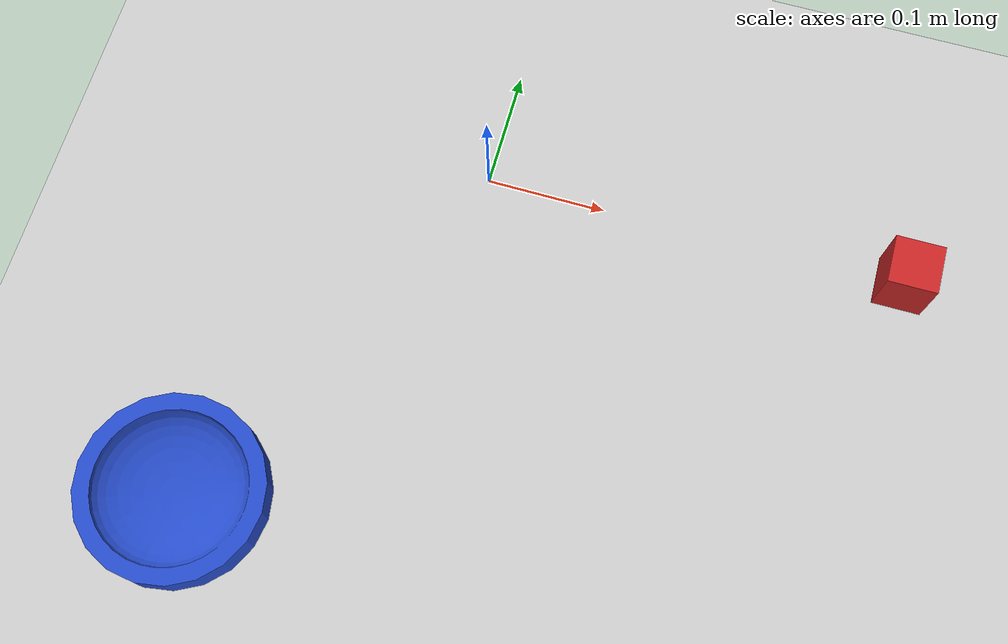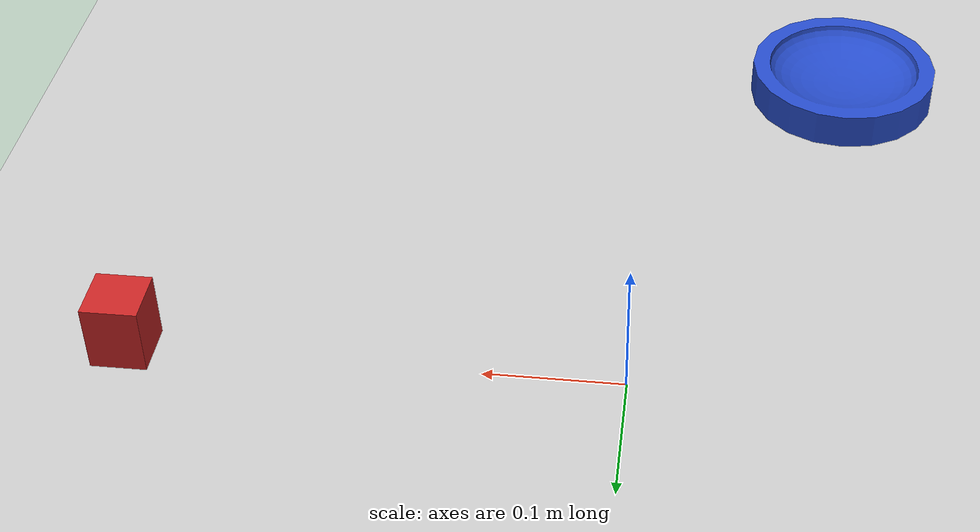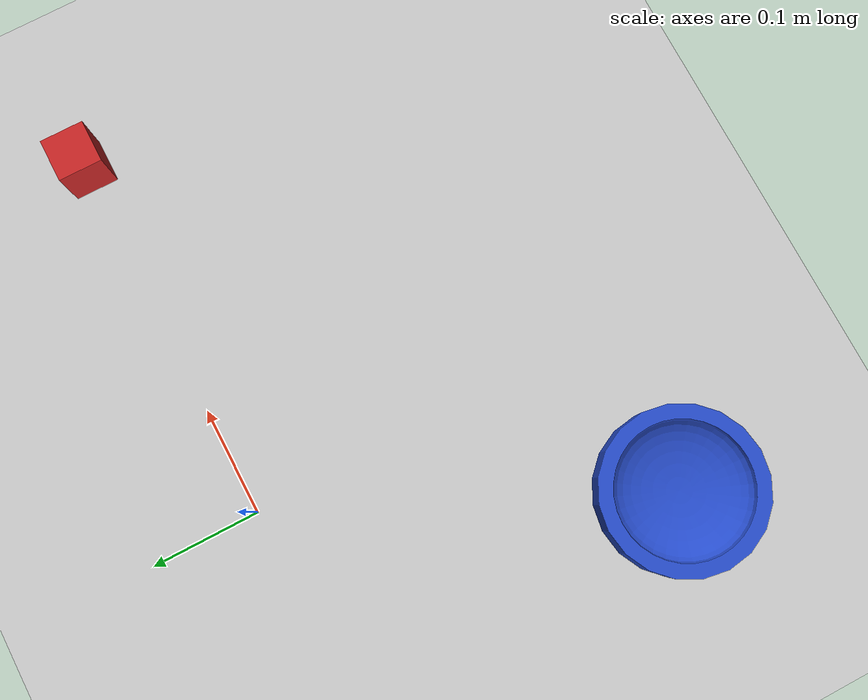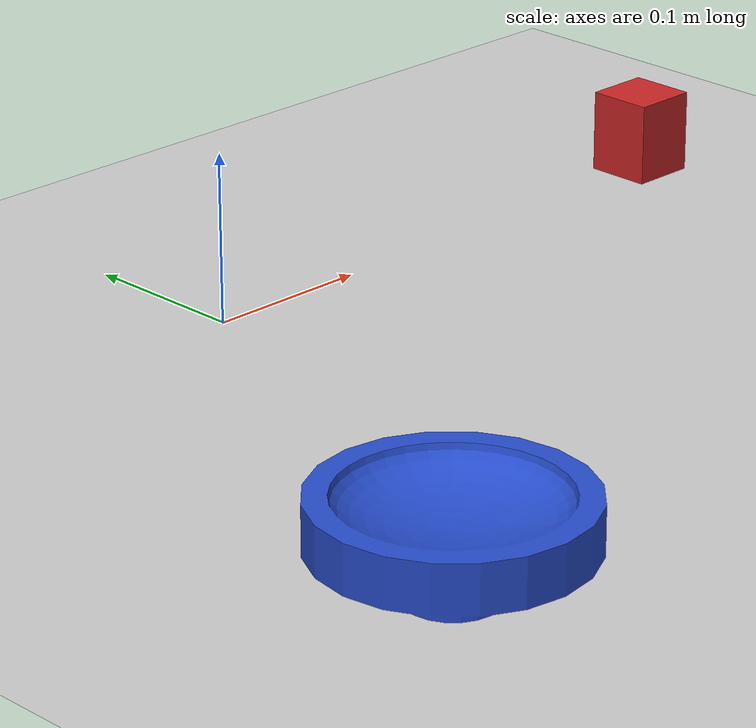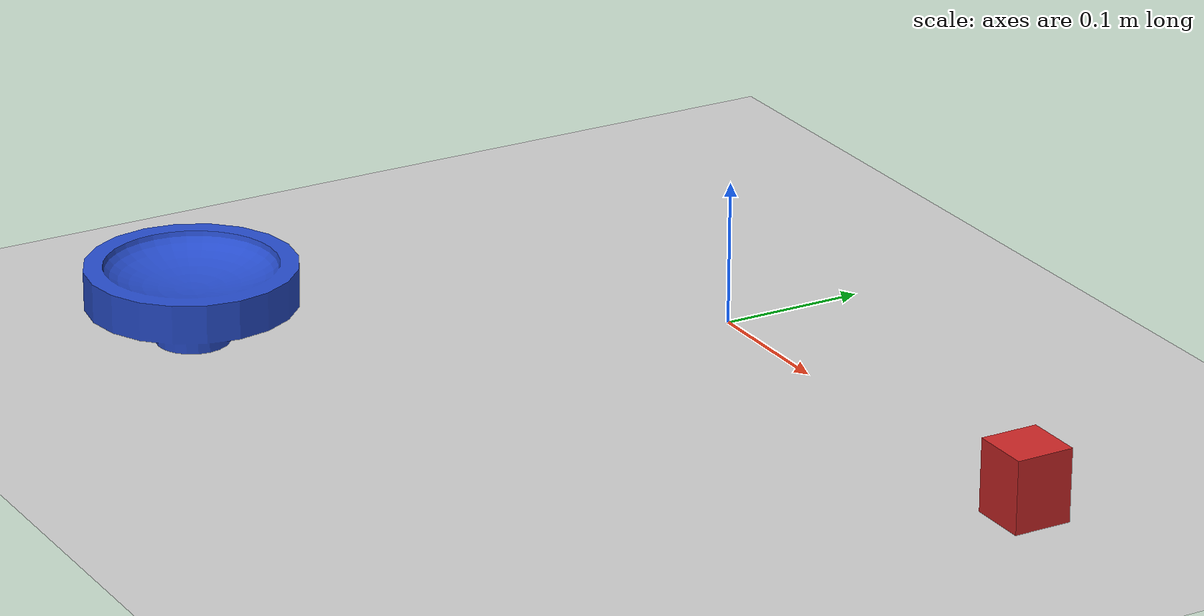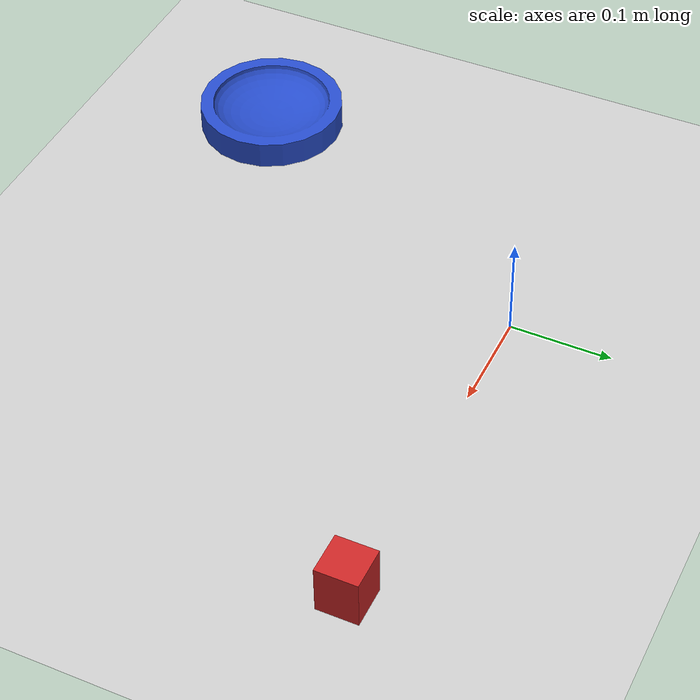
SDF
<sdf version='1.6'>
  <world name='braccio_world'>
    <light name='sun' type='directional'>
      <cast_shadows>1</cast_shadows>
      <pose frame=''>0 0 10 0 -0 0</pose>
      <diffuse>0.8 0.8 0.8 1</diffuse>
      <specular>0.2 0.2 0.2 1</specular>
      <attenuation>
        <range>1000</range>
        <constant>0.9</constant>
        <linear>0.01</linear>
        <quadratic>0.001</quadratic>
      </attenuation>
      <direction>-0.5 0.1 -0.9</direction>
    </light>

    <model name='ground_plane'>
      <static>1</static>
      <link name='link'>
        <collision name='collision'>
          <geometry>
            <plane>
              <normal>0 0 1</normal>
              <size>100 100</size>
            </plane>
          </geometry>
          <surface>
            <friction>
              <ode><mu>1</mu><mu2>1</mu2></ode>
            </friction>
          </surface>
        </collision>
        <visual name='visual'>
          <cast_shadows>0</cast_shadows>
          <geometry>
            <plane>
              <normal>0 0 1</normal>
              <size>100 100</size>
            </plane>
          </geometry>
          <material>
            <script>
              <uri>file://media/materials/scripts/gazebo.material</uri>
              <name>Gazebo/Grey</name>
            </script>
          </material>
        </visual>
      </link>
    </model>

    <gravity>0 0 -9.8</gravity>
    <magnetic_field>6e-06 2.3e-05 -4.2e-05</magnetic_field>
    <atmosphere type='adiabatic'/>
    <physics name='default_physics' default='0' type='ode'>
      <max_step_size>0.001</max_step_size>
      <real_time_factor>1</real_time_factor>
      <real_time_update_rate>1000</real_time_update_rate>
    </physics>
    <scene>
      <ambient>0.4 0.4 0.4 1</ambient>
      <background>0.7 0.7 0.7 1</background>
      <shadows>1</shadows>
    </scene>

    <!-- Pick target: red box -->
    <model name='unit_box_0'>
      <pose frame=''>0.35 0.0 0.025 0 0 0</pose>
      <link name='link'>
        <inertial>
          <mass>0.01</mass>
          <inertia>
            <ixx>0.000166667</ixx><ixy>0</ixy><ixz>0</ixz>
            <iyy>0.000166667</iyy><iyz>0</iyz>
            <izz>0.000166667</izz>
          </inertia>
        </inertial>
        <collision name='collision'>
          <geometry>
            <box><size>0.04 0.04 0.05</size></box>
          </geometry>
          <surface>
            <friction>
              <ode><mu>200</mu><mu2>100</mu2></ode>
            </friction>
            <contact>
              <ode><min_depth>0.002</min_depth><kp>100000</kp></ode>
            </contact>
          </surface>
        </collision>
        <visual name='visual'>
          <geometry>
            <box><size>0.04 0.04 0.05</size></box>
          </geometry>
          <material>
            <script>
              <name>Gazebo/Red</name>
              <uri>file://media/materials/scripts/gazebo.material</uri>
            </script>
          </material>
        </visual>
        <velocity_decay><angular>0.001</angular></velocity_decay>
      </link>
    </model>

    <!-- Drop target: bowl (blue) -->
    <model name='my_mesh'>
      <pose frame=''>-0.15 -0.325 0 0 0 0</pose>
      <link name='body'>
        <visual name='visual'>
          <geometry>
            <mesh>
              <uri>model://robot_control/worlds/bowl.dae</uri>
              <scale>0.8 0.8 0.9</scale>
            </mesh>
          </geometry>
          <material>
            <script>
              <name>Gazebo/Blue</name>
              <uri>file://media/materials/scripts/gazebo.material</uri>
            </script>
          </material>
        </visual>
        <inertial>
          <mass>0.05</mass>
          <inertia>
            <ixx>0.001</ixx><ixy>0</ixy><ixz>0</ixz>
            <iyy>0.001</iyy><iyz>0</iyz>
            <izz>0.002</izz>
          </inertia>
        </inertial>
        <collision name='collision'>
          <geometry>
            <mesh>
              <uri>model://robot_control/worlds/bowl.dae</uri>
              <scale>0.7 0.7 1</scale>
            </mesh>
          </geometry>
          <surface>
            <friction><ode><mu>50</mu><mu2>50</mu2></ode></friction>
            <contact><ode><min_depth>0.002</min_depth><kp>100000</kp></ode></contact>
          </surface>
        </collision>
        <velocity_decay><angular>0.01</angular></velocity_decay>
      </link>
    </model>

    <gui fullscreen='0'>
      <camera name='user_camera'>
        <pose frame=''>-0.5 1.5 0.8 0 0.3 -1.5</pose>
        <view_controller>orbit</view_controller>
        <projection_type>perspective</projection_type>
      </camera>
    </gui>
  </world>
</sdf>
